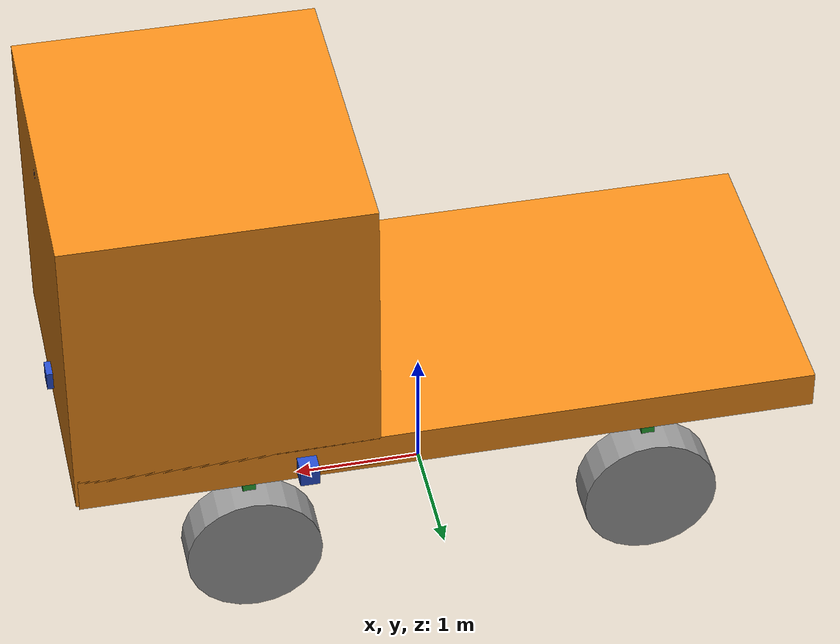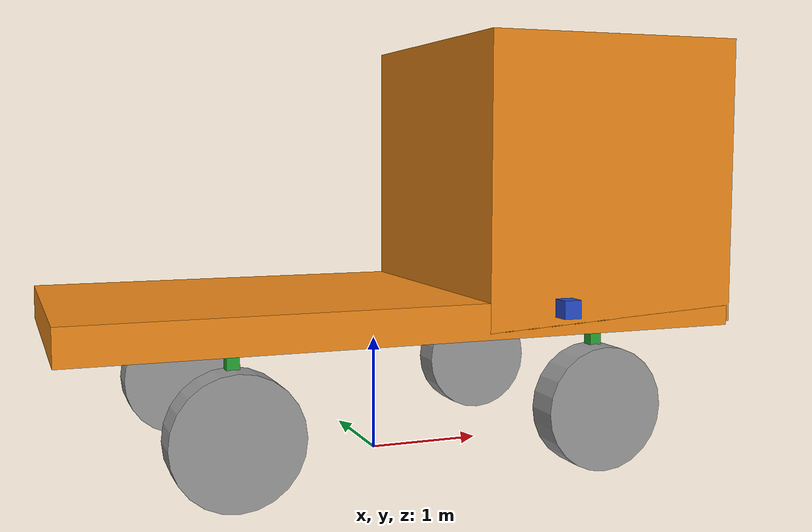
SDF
<sdf version='1.4'>
  <model name='at'>
    <link name='at_footprint'>
      <pose>0 0 0 0 -0 0</pose>
      <inertial>
        <pose>0.0102147 -4.41432e-19 1.29665 0 -0 0</pose>
        <mass>503.01</mass>
        <inertia>
          <ixx>528.394</ixx>
          <ixy>-2.26812e-18</ixy>
          <ixz>-0.551345</ixz>
          <iyy>2705.4</iyy>
          <iyz>-1.4343e-19</iyz>
          <izz>3218.76</izz>
        </inertia>
      </inertial>
      <collision name='at_footprint_collision_at_cam'>
        <pose>2.845 0 3.388 0 -0 0</pose>
        <geometry>
          <box>
            <size>0.05 0.05 0.05</size>
          </box>
        </geometry>
        <surface>
          <contact>
            <ode/>
          </contact>
          <friction>
            <ode/>
          </friction>
        </surface>
        <surface>
          <contact>
            <ode/>
          </contact>
          <friction>
            <ode/>
          </friction>
        </surface>
      </collision>
      <collision name='at_footprint_collision_at_chassis'>
        <pose>1.707 0 2.406 0 -0 0</pose>
        <geometry>
          <box>
            <size>2.325 2.495 2.452</size>
          </box>
        </geometry>
        <surface>
          <contact>
            <ode/>
          </contact>
          <friction>
            <ode/>
          </friction>
        </surface>
      </collision>
      <collision name='at_footprint_collision_at_platform'>
        <pose>0 0 1.296 0 -0 0</pose>
        <geometry>
          <box>
            <size>5.69 2.495 0.3</size>
          </box>
        </geometry>
        <surface>
          <contact>
            <ode/>
          </contact>
          <friction>
            <ode/>
          </friction>
        </surface>
      </collision>
      <visual name='at_footprint_visual'>
        <pose>0 0 0 0 -0 0</pose>
        <geometry>
          <box>
            <size>0.01 0.01 0.01</size>
          </box>
        </geometry>
      </visual>
      <visual name='at_footprint_visual_at_cam'>
        <pose>2.845 0 3.388 0 -0 0</pose>
        <geometry>
          <box>
            <size>0.05 0.05 0.05</size>
          </box>
        </geometry>
        <material>
          <script>
            <name>Gazebo/Blue</name>
            <uri>__default__</uri>
          </script>
        </material>
      </visual>
      <visual name='at_footprint_visual_at_chassis'>
        <pose>1.707 0 2.406 0 -0 0</pose>
        <geometry>
          <box>
            <size>2.325 2.495 2.452</size>
          </box>
        </geometry>
        <material>
          <script>
            <name>Gazebo/Orange</name>
            <uri>__default__</uri>
          </script>
        </material>
      </visual>
      <visual name='at_footprint_visual_at_lidar0'>
        <pose>2.845 0 1.4006 0 -0 0</pose>
        <geometry>
          <box>
            <size>0.15 0.15 0.15</size>
          </box>
        </geometry>
        <material>
          <script>
            <name>Gazebo/Blue</name>
            <uri>__default__</uri>
          </script>
        </material>
      </visual>
      <visual name='at_footprint_visual_at_lidar2'>
        <pose>1.138 1.4475 1.4006 0 -0 1.5708</pose>
        <geometry>
          <box>
            <size>0.15 0.15 0.15</size>
          </box>
        </geometry>
        <material>
          <script>
            <name>Gazebo/Blue</name>
            <uri>__default__</uri>
          </script>
        </material>
      </visual>
      <visual name='at_footprint_visual_at_lidar3'>
        <pose>1.138 -1.4475 1.4006 0 0 -1.5708</pose>
        <geometry>
          <box>
            <size>0.15 0.15 0.15</size>
          </box>
        </geometry>
        <material>
          <script>
            <name>Gazebo/Blue</name>
            <uri>__default__</uri>
          </script>
        </material>
      </visual>
      <visual name='at_footprint_visual_at_platform'>
        <pose>0 0 1.296 0 -0 0</pose>
        <geometry>
          <box>
            <size>5.69 2.495 0.3</size>
          </box>
        </geometry>
        <material>
          <script>
            <name>Gazebo/Orange</name>
            <uri>__default__</uri>
          </script>
        </material>
      </visual>
      <velocity_decay>
        <linear>0</linear>
        <angular>0</angular>
      </velocity_decay>
      <velocity_decay>
        <linear>0</linear>
        <angular>0</angular>
      </velocity_decay>
      <velocity_decay>
        <linear>0</linear>
        <angular>0</angular>
      </velocity_decay>
      <velocity_decay>
        <linear>0</linear>
        <angular>0</angular>
      </velocity_decay>
      <sensor name='cam' type='camera'>
        <update_rate>30</update_rate>
        <camera name='head'>
          <horizontal_fov>1.39626</horizontal_fov>
          <image>
            <width>800</width>
            <height>800</height>
            <format>R8G8B8</format>
          </image>
          <clip>
            <near>0.02</near>
            <far>300</far>
          </clip>
          <noise>
            <type>gaussian</type>
            <mean>0</mean>
            <stddev>0.007</stddev>
          </noise>
        </camera>
        <plugin name='camera_controller' filename='libgazebo_ros_camera.so'>
          <alwaysOn>true</alwaysOn>
          <updateRate>0.0</updateRate>
          <cameraName>at/cam</cameraName>
          <imageTopicName>image_raw</imageTopicName>
          <cameraInfoTopicName>camera_info</cameraInfoTopicName>
          <frameName>at/cam</frameName>
          <hackBaseline>0.07</hackBaseline>
          <distortionK1>0.0</distortionK1>
          <distortionK2>0.0</distortionK2>
          <distortionK3>0.0</distortionK3>
          <distortionT1>0.0</distortionT1>
          <distortionT2>0.0</distortionT2>
        </plugin>
        <pose>2.845 0 3.388 0 -0 0</pose>
      </sensor>
      <velocity_decay>
        <linear>0</linear>
        <angular>0</angular>
      </velocity_decay>
      <velocity_decay>
        <linear>0</linear>
        <angular>0</angular>
      </velocity_decay>
      <gravity>1</gravity>
      <self_collide>1</self_collide>
      <gravity>1</gravity>
      <velocity_decay>
        <linear>0</linear>
        <angular>0</angular>
      </velocity_decay>
      <self_collide>0</self_collide>
      <sensor name='lidar0' type='ray'>
        <visualize>1</visualize>
        <update_rate>10</update_rate>
        <ray>
          <scan>
            <horizontal>
              <samples>360</samples>
              <resolution>1</resolution>
              <min_angle>-1.5</min_angle>
              <max_angle>1.5</max_angle>
            </horizontal>
          </scan>
          <range>
            <min>0.1</min>
            <max>50</max>
            <resolution>0.01</resolution>
          </range>
          <noise>
            <type>gaussian</type>
            <mean>0</mean>
            <stddev>0.01</stddev>
          </noise>
        </ray>
        <plugin name='at_lidar0' filename='libgazebo_ros_laser.so'>
          <topicName>at/fl_lidar</topicName>
          <frameName>at_lidar0</frameName>
        </plugin>
        <pose>2.845 0 1.4006 0 -0 0</pose>
      </sensor>
      <gravity>1</gravity>
      <velocity_decay>
        <linear>0</linear>
        <angular>0</angular>
      </velocity_decay>
      <self_collide>0</self_collide>
      <gravity>1</gravity>
      <self_collide>1</self_collide>
      <gravity>1</gravity>
      <velocity_decay>
        <linear>0</linear>
        <angular>0</angular>
      </velocity_decay>
      <self_collide>0</self_collide>
      <sensor name='lidar2' type='ray'>
        <visualize>1</visualize>
        <update_rate>10</update_rate>
        <ray>
          <scan>
            <horizontal>
              <samples>360</samples>
              <resolution>1</resolution>
              <min_angle>-1.5</min_angle>
              <max_angle>1.5</max_angle>
            </horizontal>
          </scan>
          <range>
            <min>0.1</min>
            <max>50</max>
            <resolution>0.01</resolution>
          </range>
          <noise>
            <type>gaussian</type>
            <mean>0</mean>
            <stddev>0.01</stddev>
          </noise>
        </ray>
        <plugin name='at_lidar2' filename='libgazebo_ros_laser.so'>
          <topicName>at/sl_lidar</topicName>
          <frameName>at_lidar2</frameName>
        </plugin>
        <pose>1.138 1.4475 1.4006 0 -0 1.5708</pose>
      </sensor>
      <gravity>1</gravity>
      <velocity_decay>
        <linear>0</linear>
        <angular>0</angular>
      </velocity_decay>
      <self_collide>0</self_collide>
      <gravity>1</gravity>
      <self_collide>1</self_collide>
      <gravity>1</gravity>
      <velocity_decay>
        <linear>0</linear>
        <angular>0</angular>
      </velocity_decay>
      <self_collide>0</self_collide>
      <sensor name='lidar3' type='ray'>
        <visualize>1</visualize>
        <update_rate>10</update_rate>
        <ray>
          <scan>
            <horizontal>
              <samples>360</samples>
              <resolution>1</resolution>
              <min_angle>-1.5</min_angle>
              <max_angle>1.5</max_angle>
            </horizontal>
          </scan>
          <range>
            <min>0.1</min>
            <max>50</max>
            <resolution>0.01</resolution>
          </range>
          <noise>
            <type>gaussian</type>
            <mean>0</mean>
            <stddev>0.01</stddev>
          </noise>
        </ray>
        <plugin name='at_lidar3' filename='libgazebo_ros_laser.so'>
          <topicName>at/sr_lidar</topicName>
          <frameName>at_lidar3</frameName>
        </plugin>
        <pose>1.138 -1.4475 1.4006 0 0 -1.5708</pose>
      </sensor>
    </link>
    <link name='at_bl_hinge'>
      <pose>-1.553 1.1475 0.8345 0 -0 0</pose>
      <inertial>
        <pose>0 0 0 0 -0 0</pose>
        <mass>10</mass>
        <inertia>
          <ixx>0.330447</ixx>
          <ixy>0</ixy>
          <ixz>0</ixz>
          <iyy>0.330447</iyy>
          <iyz>0</iyz>
          <izz>0.0166</izz>
        </inertia>
      </inertial>
      <visual name='at_bl_hinge_visual'>
        <pose>0 0 0 0 -0 0</pose>
        <geometry>
          <box>
            <size>0.1 0.1 0.623</size>
          </box>
        </geometry>
        <material>
          <script>
            <name>Gazebo/Green</name>
            <uri>__default__</uri>
          </script>
        </material>
      </visual>
      <gravity>1</gravity>
      <velocity_decay>
        <linear>0</linear>
        <angular>0</angular>
      </velocity_decay>
      <self_collide>0</self_collide>
      <gravity>1</gravity>
      <self_collide>0</self_collide>
    </link>
    <joint name='at_platform_2_bl_hinge' type='revolute'>
      <child>at_bl_hinge</child>
      <parent>at_footprint</parent>
      <axis>
        <xyz>0 0 1</xyz>
        <limit>
          <lower>-0.942478</lower>
          <upper>0.942478</upper>
          <effort>100000</effort>
          <velocity>1</velocity>
        </limit>
        <dynamics>
          <damping>100</damping>
        </dynamics>
      </axis>
    </joint>
    <link name='at_bl_wheel'>
      <pose>-1.553 1.2225 0.523 -1.5708 0 0</pose>
      <inertial>
        <pose>0 0 0 0 -0 0</pose>
        <mass>100</mass>
        <inertia>
          <ixx>6.83162</ixx>
          <ixy>0</ixy>
          <ixz>0</ixz>
          <iyy>6.83162</iyy>
          <iyz>0</iyz>
          <izz>13.6765</izz>
        </inertia>
      </inertial>
      <collision name='at_bl_wheel_collision'>
        <pose>0 0 0 0 -0 0</pose>
        <geometry>
          <cylinder>
            <length>0.05</length>
            <radius>0.523</radius>
          </cylinder>
        </geometry>
        <surface>
          <contact>
            <ode/>
          </contact>
          <friction>
            <ode>
              <mu>1</mu>
              <mu2>1</mu2>
            </ode>
          </friction>
        </surface>
      </collision>
      <visual name='at_bl_wheel_visual'>
        <pose>0 0 0 0 -0 0</pose>
        <geometry>
          <cylinder>
            <length>0.3</length>
            <radius>0.523</radius>
          </cylinder>
        </geometry>
        <material>
          <script>
            <name>Gazebo/Grey</name>
            <uri>__default__</uri>
          </script>
        </material>
      </visual>
      <gravity>1</gravity>
      <velocity_decay>
        <linear>0</linear>
        <angular>0</angular>
      </velocity_decay>
      <self_collide>0</self_collide>
      <gravity>1</gravity>
      <self_collide>0</self_collide>
    </link>
    <joint name='at_bl_hinge_2_wheel' type='revolute'>
      <child>at_bl_wheel</child>
      <parent>at_bl_hinge</parent>
      <axis>
        <xyz>0 1 3.26795e-07</xyz>
        <limit>
          <lower>-1e+16</lower>
          <upper>1e+16</upper>
        </limit>
        <dynamics>
          <damping>0.2</damping>
        </dynamics>
      </axis>
    </joint>
    <link name='at_br_hinge'>
      <pose>-1.553 -1.1475 0.8345 0 -0 0</pose>
      <inertial>
        <pose>0 0 0 0 -0 0</pose>
        <mass>10</mass>
        <inertia>
          <ixx>0.330447</ixx>
          <ixy>0</ixy>
          <ixz>0</ixz>
          <iyy>0.330447</iyy>
          <iyz>0</iyz>
          <izz>0.0166</izz>
        </inertia>
      </inertial>
      <visual name='at_br_hinge_visual'>
        <pose>0 0 0 0 -0 0</pose>
        <geometry>
          <box>
            <size>0.1 0.1 0.623</size>
          </box>
        </geometry>
        <material>
          <script>
            <name>Gazebo/Green</name>
            <uri>__default__</uri>
          </script>
        </material>
      </visual>
      <gravity>1</gravity>
      <velocity_decay>
        <linear>0</linear>
        <angular>0</angular>
      </velocity_decay>
      <self_collide>0</self_collide>
      <gravity>1</gravity>
      <self_collide>0</self_collide>
    </link>
    <joint name='at_platform_2_br_hinge' type='revolute'>
      <child>at_br_hinge</child>
      <parent>at_footprint</parent>
      <axis>
        <xyz>0 0 1</xyz>
        <limit>
          <lower>-0.942478</lower>
          <upper>0.942478</upper>
          <effort>100000</effort>
          <velocity>1</velocity>
        </limit>
        <dynamics>
          <damping>100</damping>
        </dynamics>
      </axis>
    </joint>
    <link name='at_br_wheel'>
      <pose>-1.553 -1.2225 0.523 -1.5708 0 0</pose>
      <inertial>
        <pose>0 0 0 0 -0 0</pose>
        <mass>100</mass>
        <inertia>
          <ixx>6.83162</ixx>
          <ixy>0</ixy>
          <ixz>0</ixz>
          <iyy>6.83162</iyy>
          <iyz>0</iyz>
          <izz>13.6765</izz>
        </inertia>
      </inertial>
      <collision name='at_br_wheel_collision'>
        <pose>0 0 0 0 -0 0</pose>
        <geometry>
          <cylinder>
            <length>0.05</length>
            <radius>0.523</radius>
          </cylinder>
        </geometry>
        <surface>
          <contact>
            <ode/>
          </contact>
          <friction>
            <ode>
              <mu>1</mu>
              <mu2>1</mu2>
            </ode>
          </friction>
        </surface>
      </collision>
      <visual name='at_br_wheel_visual'>
        <pose>0 0 0 0 -0 0</pose>
        <geometry>
          <cylinder>
            <length>0.3</length>
            <radius>0.523</radius>
          </cylinder>
        </geometry>
        <material>
          <script>
            <name>Gazebo/Grey</name>
            <uri>__default__</uri>
          </script>
        </material>
      </visual>
      <gravity>1</gravity>
      <velocity_decay>
        <linear>0</linear>
        <angular>0</angular>
      </velocity_decay>
      <self_collide>0</self_collide>
      <gravity>1</gravity>
      <self_collide>0</self_collide>
    </link>
    <joint name='at_br_hinge_2_wheel' type='revolute'>
      <child>at_br_wheel</child>
      <parent>at_br_hinge</parent>
      <axis>
        <xyz>0 1 3.26795e-07</xyz>
        <limit>
          <lower>-1e+16</lower>
          <upper>1e+16</upper>
        </limit>
        <dynamics>
          <damping>0.2</damping>
        </dynamics>
      </axis>
    </joint>
    <link name='at_fl_hinge'>
      <pose>1.553 1.1475 0.8345 0 -0 0</pose>
      <inertial>
        <pose>0 0 0 0 -0 0</pose>
        <mass>10</mass>
        <inertia>
          <ixx>0.330447</ixx>
          <ixy>0</ixy>
          <ixz>0</ixz>
          <iyy>0.330447</iyy>
          <iyz>0</iyz>
          <izz>0.0166</izz>
        </inertia>
      </inertial>
      <visual name='at_fl_hinge_visual'>
        <pose>0 0 0 0 -0 0</pose>
        <geometry>
          <box>
            <size>0.1 0.1 0.623</size>
          </box>
        </geometry>
        <material>
          <script>
            <name>Gazebo/Green</name>
            <uri>__default__</uri>
          </script>
        </material>
      </visual>
      <gravity>1</gravity>
      <velocity_decay>
        <linear>0</linear>
        <angular>0</angular>
      </velocity_decay>
      <self_collide>0</self_collide>
      <gravity>1</gravity>
      <self_collide>0</self_collide>
    </link>
    <joint name='at_platform_2_fl_hinge' type='revolute'>
      <child>at_fl_hinge</child>
      <parent>at_footprint</parent>
      <axis>
        <xyz>0 0 1</xyz>
        <limit>
          <lower>-0.942478</lower>
          <upper>0.942478</upper>
          <effort>100000</effort>
          <velocity>1</velocity>
        </limit>
        <dynamics>
          <damping>100</damping>
        </dynamics>
      </axis>
    </joint>
    <link name='at_fl_wheel'>
      <pose>1.553 1.2225 0.523 -1.5708 0 0</pose>
      <inertial>
        <pose>0 0 0 0 -0 0</pose>
        <mass>100</mass>
        <inertia>
          <ixx>6.83162</ixx>
          <ixy>0</ixy>
          <ixz>0</ixz>
          <iyy>6.83162</iyy>
          <iyz>0</iyz>
          <izz>13.6765</izz>
        </inertia>
      </inertial>
      <collision name='at_fl_wheel_collision'>
        <pose>0 0 0 0 -0 0</pose>
        <geometry>
          <cylinder>
            <length>0.05</length>
            <radius>0.523</radius>
          </cylinder>
        </geometry>
        <surface>
          <contact>
            <ode/>
          </contact>
          <friction>
            <ode>
              <mu>1</mu>
              <mu2>1</mu2>
            </ode>
          </friction>
        </surface>
      </collision>
      <visual name='at_fl_wheel_visual'>
        <pose>0 0 0 0 -0 0</pose>
        <geometry>
          <cylinder>
            <length>0.3</length>
            <radius>0.523</radius>
          </cylinder>
        </geometry>
        <material>
          <script>
            <name>Gazebo/Grey</name>
            <uri>__default__</uri>
          </script>
        </material>
      </visual>
      <gravity>1</gravity>
      <velocity_decay>
        <linear>0</linear>
        <angular>0</angular>
      </velocity_decay>
      <self_collide>0</self_collide>
      <gravity>1</gravity>
      <self_collide>0</self_collide>
    </link>
    <joint name='at_fl_hinge_2_wheel' type='revolute'>
      <child>at_fl_wheel</child>
      <parent>at_fl_hinge</parent>
      <axis>
        <xyz>0 1 3.26795e-07</xyz>
        <limit>
          <lower>-1e+16</lower>
          <upper>1e+16</upper>
        </limit>
        <dynamics>
          <damping>0.2</damping>
        </dynamics>
      </axis>
    </joint>
    <link name='at_fr_hinge'>
      <pose>1.553 -1.1475 0.8345 0 -0 0</pose>
      <inertial>
        <pose>0 0 0 0 -0 0</pose>
        <mass>10</mass>
        <inertia>
          <ixx>0.330447</ixx>
          <ixy>0</ixy>
          <ixz>0</ixz>
          <iyy>0.330447</iyy>
          <iyz>0</iyz>
          <izz>0.0166</izz>
        </inertia>
      </inertial>
      <visual name='at_fr_hinge_visual'>
        <pose>0 0 0 0 -0 0</pose>
        <geometry>
          <box>
            <size>0.1 0.1 0.623</size>
          </box>
        </geometry>
        <material>
          <script>
            <name>Gazebo/Green</name>
            <uri>__default__</uri>
          </script>
        </material>
      </visual>
      <gravity>1</gravity>
      <velocity_decay>
        <linear>0</linear>
        <angular>0</angular>
      </velocity_decay>
      <self_collide>0</self_collide>
      <gravity>1</gravity>
      <self_collide>0</self_collide>
    </link>
    <joint name='at_platform_2_fr_hinge' type='revolute'>
      <child>at_fr_hinge</child>
      <parent>at_footprint</parent>
      <axis>
        <xyz>0 0 1</xyz>
        <limit>
          <lower>-0.942478</lower>
          <upper>0.942478</upper>
          <effort>100000</effort>
          <velocity>1</velocity>
        </limit>
        <dynamics>
          <damping>100</damping>
        </dynamics>
      </axis>
    </joint>
    <link name='at_fr_wheel'>
      <pose>1.553 -1.2225 0.523 -1.5708 0 0</pose>
      <inertial>
        <pose>0 0 0 0 -0 0</pose>
        <mass>100</mass>
        <inertia>
          <ixx>6.83162</ixx>
          <ixy>0</ixy>
          <ixz>0</ixz>
          <iyy>6.83162</iyy>
          <iyz>0</iyz>
          <izz>13.6765</izz>
        </inertia>
      </inertial>
      <collision name='at_fr_wheel_collision'>
        <pose>0 0 0 0 -0 0</pose>
        <geometry>
          <cylinder>
            <length>0.05</length>
            <radius>0.523</radius>
          </cylinder>
        </geometry>
        <surface>
          <contact>
            <ode/>
          </contact>
          <friction>
            <ode>
              <mu>1</mu>
              <mu2>1</mu2>
            </ode>
          </friction>
        </surface>
      </collision>
      <visual name='at_fr_wheel_visual'>
        <pose>0 0 0 0 -0 0</pose>
        <geometry>
          <cylinder>
            <length>0.3</length>
            <radius>0.523</radius>
          </cylinder>
        </geometry>
        <material>
          <script>
            <name>Gazebo/Grey</name>
            <uri>__default__</uri>
          </script>
        </material>
      </visual>
      <gravity>1</gravity>
      <velocity_decay>
        <linear>0</linear>
        <angular>0</angular>
      </velocity_decay>
      <self_collide>0</self_collide>
      <gravity>1</gravity>
      <self_collide>0</self_collide>
    </link>
    <joint name='at_fr_hinge_2_wheel' type='revolute'>
      <child>at_fr_wheel</child>
      <parent>at_fr_hinge</parent>
      <axis>
        <xyz>0 1 3.26795e-07</xyz>
        <limit>
          <lower>-1e+16</lower>
          <upper>1e+16</upper>
        </limit>
        <dynamics>
          <damping>0.2</damping>
        </dynamics>
      </axis>
    </joint>
    <plugin name='at_ground_truth' filename='libgazebo_ros_p3d.so'>
      <topicName>at/ground_truth</topicName>
      <frameName>world</frameName>
      <bodyName>at_footprint</bodyName>
      <gaussianNoise>0.0</gaussianNoise>
      <alwaysOn>true</alwaysOn>
      <updateRate>20.0</updateRate>
    </plugin>
    <static>0</static>
    <plugin name='gazebo_ros_control' filename='libgazebo_ros_control.so'>
      <robotNamespace>/at</robotNamespace>
      <controlPeriod>0.001</controlPeriod>
    </plugin>
  </model>
</sdf>
